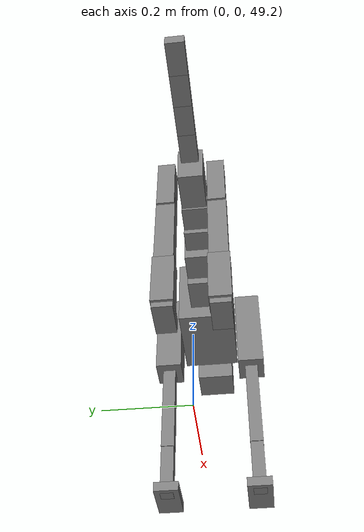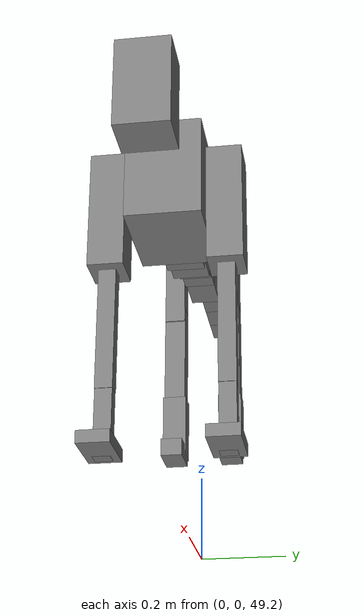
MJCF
<mujoco model="dog">

    <default>
        <joint armature="0.02" stiffness="1" damping="0.2" limited="true"/>
        <geom condim="3" friction="1 0.05 0.05" margin="0.01"/>
        <motor ctrllimited="true" ctrlrange="-1.0 1.0" forcelimited="true" gear="50"/>
    </default>

    <compiler inertiafromgeom="true" angle="radian"/>

    <option timestep="0.016" iterations="50" tolerance="1e-10" solver="Newton" jacobian="dense" cone="pyramidal"/>

    <size nconmax="20000" njmax="60000" nstack="5000000"/>
    <visual>
        <map force="0.1" zfar="30"/>
        <rgba haze="0.15 0.25 0.35 1"/>
        <quality shadowsize="2048"/>
        <global offwidth="800" offheight="800"/>
    </visual>

    <asset>
        <texture type="skybox" builtin="gradient" rgb1="0.3 0.5 0.7" rgb2="0 0 0" width="512" height="512"/>
        <texture name="texplane" type="2d" builtin="checker" rgb1=".2 .3 .4" rgb2=".1 0.15 0.2" width="512" height="512"
                 mark="cross" markrgb=".8 .8 .8"/>
        <texture name="texgeom" type="cube" builtin="flat" mark="cross" width="127" height="1278" rgb1="0.8 0.6 0.4"
                 rgb2="0.8 0.6 0.4" markrgb="1 1 1" random="0.01"/>

        <material name="matplane" reflectance="0.3" texture="texplane" texrepeat="1 1" texuniform="true"/>
        <material name="matgeom" texture="texgeom" texuniform="true" rgba="0.8 0.6 .4 1"/>
    </asset>

    <worldbody>
        <geom name="floor" pos="0 0 0" size="0 0 .25" type="plane" material="matplane" condim="3"/>

        <light directional="false" diffuse=".2 .2 .2" specular="0 0 0" pos="0 0 5" dir="0 0 -1" castshadow="false"/>
        <light mode="targetbodycom" target="torso" directional="false" diffuse=".8 .8 .8" specular="0.3 0.3 0.3"
               pos="0 0 4.0" dir="0 0 -1"/>

        <body name="root" pos="0 0 50">
            <freejoint name="root_1"/>
            <geom type="box" pos="0 0 -0.02" size="0.0774  0.0358  0.063" density="2030"/>

            <body name="spine1" pos="0.054 0 0">
                <joint name="spine1_y" axis="0 1 0" range="0 0.7" limited="true"/>
                <geom type="box" pos="0.02375 0 -0.03" size="0.04375  0.0375  0.05985" density="2030"/>

                <body name="spine2" pos="0.0612 0 0">
                    <joint name="spine2_y" axis="0 1 0" range="-0.15 0.15" limited="true"/>
                    <geom type="box" pos="0.03555  0  -0.04" size="0.04055  0.039  0.06615" density="2030"/>

                    <body name="spine3" pos="0.0730 0 0">
                        <joint name="spine3_y" axis="0 1 0" range="-0.15 0.15" limited="true"/>
                        <geom type="box" pos="0.03555  0  -0.057" size="0.04555  0.0445  0.081" density="2030"/>

                        <body name="spine4" pos="0.0780 0 0">
                            <joint name="spine4_y" axis="0 1 0" range="-0.15 0.15" limited="true"/>
                            <geom type="box" pos="0.05265  0  -0.07" size="0.05265  0.045  0.09135" density="2030"/>

                            <body name="torso" pos="0.1082 0 0">
                                <joint name="torso_y" axis="0 1 0" range="-0.15 0.15" limited="true"/>
                                <geom type="box" pos="0.11925  0  -0.085" size="0.11925  0.085  0.11745"
                                      density="2030"/>

                                <body name="neck1" pos="0.2160  0   0.0180">
                                    <joint name="neck1_y" axis="0 1 0" range="-1.2  -1" limited="true"/>
                                    <geom type="box" pos="0.0423  0  0" size="0.0423  0.03  0.036" density="2325"/>

                                    <body name="neck2" pos="0.0853  0  0">
                                        <joint name="neck2_y" axis="0 1 0" range="0.1  0" limited="true"/>
                                        <geom type="box" pos="0.0423  0  0" size="0.0423  0.03  0.036" density="2325"/>

                                        <body name="head" pos="0.0853  0  0">
                                            <joint name="head_y" axis="0 1 0" range="-0.3  -0.2" limited="true"/>
                                            <geom type="box" pos="0.0531  0  -0.055" size="0.0531  0.06  0.1044"
                                                  density="4030"/>

                                        </body>
                                    </body>
                                </body>

                                <body name="front_shoulder" pos="0.156  0   -0.0480">
                                    <joint name="front_shoulder_y" axis="0 1 0" range="-1 1.5" limited="true"/>
                                    <geom type="box" pos="0 0.13 -0.1111" size="0.0465  0.0397  0.1378" density="1158"/>
                                    <geom type="box" pos="0 -0.13 -0.1111" size="0.0465  0.0397  0.1378"
                                          density="1158"/>

                                    <body name="front_elbow" pos="0  0  -0.2223">
                                        <joint name="front_elbow_y" axis="0 1 0" range="-2 0" limited="true"/>
                                        <geom type="box" pos="0 0.13 -0.1513" size="0.0188  0.0193  0.1513"
                                              density="1081"/>
                                        <geom type="box" pos="0 -0.13 -0.1513" size="0.0188  0.0193  0.1513"
                                              density="1081"/>

                                        <body name="front_wrist" pos="0  0  -0.3026">
                                            <joint name="front_wrist_y" axis="0 1 0" range="-0.2 0" limited="true"/>
                                            <geom type="box" pos="0 0.13 -0.0680" size="0.0169  0.0188  0.0811"
                                                  density="1664"/>
                                            <geom type="box" pos="0 -0.13 -0.0680" size="0.0169  0.0188  0.0811"
                                                  density="1664"/>

                                            <body name="front_finger_end" pos="0  0  -0.1360">
                                                <joint name="front_finger_y" axis="0 1 0" range="-0.4 1"
                                                       limited="true"/>
                                                <geom type="box" pos="0.0353  0.13  0.0014"
                                                      size="0.0646  0.0353  0.0136" density="1515"/>
                                                <geom type="box" pos="0.0353  -0.13  0.0014"
                                                      size="0.0646  0.0353  0.0136" density="1515"/>

                                            </body>

                                        </body>
                                    </body>
                                </body>

                            </body>
                        </body>
                    </body>
                </body>
            </body>

            <body name="back_hip" pos="-0.03 0 -0.018">
                <joint name="back_hip_y" axis="0 1 0" range="-1.5 0.3" limited="true"/>
                <geom type="box" pos="0 0.07 -0.0648" size="0.0315  0.0247  0.0876" density="1154"/>
                <geom type="box" pos="0 -0.07 -0.0648" size="0.0315  0.0247  0.0876" density="1154"/>

                <body name="back_knee" pos="0  0  -0.1295">
                    <joint name="back_knee_y" axis="0 1 0" range="0 2.8" limited="true"/>
                    <geom type="box" pos="0 0.07 -0.1224" size="0.0261  0.0257  0.1380" density="1227"/>
                    <geom type="box" pos="0 -0.07 -0.1224" size="0.0261  0.0257  0.1380" density="1227"/>

                    <body name="back_ankle" pos="0  0  -0.2449">
                        <joint name="back_ankle_y" axis="0 1 0" range="-2.2 0" limited="true"/>
                        <geom type="box" pos="0 0.07 -0.0651" size="0.0285  0.0285  0.0764" density="1284"/>
                        <geom type="box" pos="0 -0.07 -0.0651" size="0.0285  0.0285  0.0764" density="1284"/>

                        <body name="back_toe_end" pos="0  0  -0.1302">
                            <joint name="back_toe_y" axis="0 1 0" range="-0.4 1" limited="true"/>
                            <geom type="box" pos="0.0261  0.07  -0.0062" size="0.0478  0.0261  0.0212" density="1515"/>
                            <geom type="box" pos="0.0261  -0.07  -0.0062" size="0.0478  0.0261  0.0212" density="1515"/>

                        </body>
                    </body>
                </body>
            </body>

            <body name="tail1" pos="-0.074 0 -0.006">
                <joint name="tail1_y" axis="0 1 0" range="-0.2 0.2" limited="true"/>
                <geom type="box" pos="-0.0536  0  0" size="0.045  0.025  0.0175" density="1587"/>

                <body name="tail2" pos="-0.09 0 0">
                    <joint name="tail2_y" axis="0 1 0" range="-0.2 0.2" limited="true"/>
                    <geom type="box" pos="-0.0536  0  0" size="0.045  0.025  0.0175" density="1587"/>

                    <body name="tail3" pos="-0.09 0 0">
                        <joint name="tail3_y" axis="0 1 0" range="-0.2 0.2" limited="true"/>
                        <geom type="box" pos="-0.0536  0  0" size="0.045  0.025  0.0175" density="1587"/>

                        <body name="tail4" pos="-0.09 0 0">
                            <joint name="tail4_y" axis="0 1 0" range="-0.2 0.2" limited="true"/>
                            <geom type="box" pos="-0.0536  0  0" size="0.045  0.025  0.0175" density="1587"/>

                        </body>
                    </body>
                </body>
            </body>
        </body>
    </worldbody>

    <actuator>
        <motor joint="spine1_y" forcerange="-150 150     "/>
        <motor joint="spine2_y" forcerange="-150 150     "/>
        <motor joint="spine3_y" forcerange="-150 150     "/>
        <motor joint="spine4_y" forcerange="-150 150     "/>
        <motor joint="torso_y" forcerange="-150 150     "/>
        <motor joint="neck1_y" forcerange="-100 100       "/>
        <motor joint="neck2_y" forcerange="-100 100       "/>
        <motor joint="head_y" forcerange="-150 150       "/>
        <motor joint="front_shoulder_y" forcerange="-164.99 199.73"/>
        <motor joint="front_elbow_y" forcerange="-117.81 122.27"/>
        <motor joint="front_wrist_y" forcerange="-60.39 90.12"/>
        <motor joint="front_finger_y" forcerange="-62.11 85.93"/>
        <motor joint="back_hip_y" forcerange="-271.55 258.23"/>
        <motor joint="back_knee_y" forcerange="-324.68 249.60"/>
        <motor joint="back_angle_y" forcerange="-229.08 126.60"/>
        <motor joint="back_toe_y" forcerange="-24.97 103.45"/>
        <motor joint="tail1_y" forcerange="-50 50     "/>
        <motor joint="tail2_y" forcerange="-50 50     "/>
        <motor joint="tail3_y" forcerange="-50 50     "/>
        <motor joint="tail4_y" forcerange="-50 50     "/>
    </actuator>
</mujoco>
